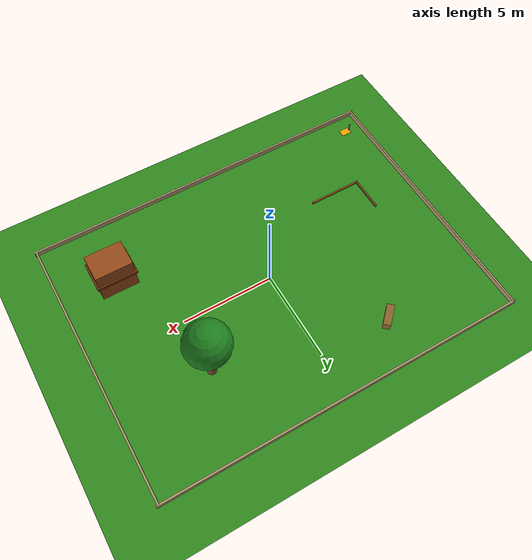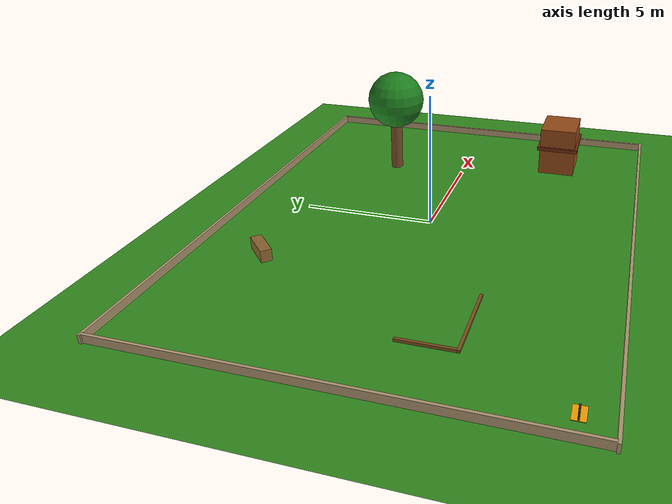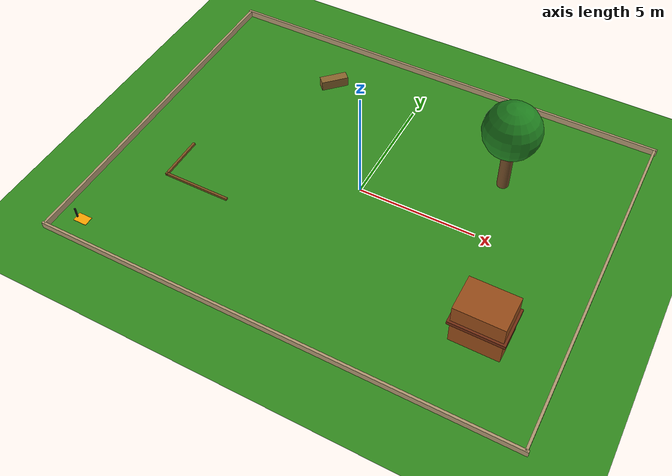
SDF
<?xml version="1.0"?>
<sdf version="1.9">
  <world name="garden">

    <!-- ================================================================
         Physics
         ================================================================ -->
    <physics name="default_physics" default="true" type="ode">
      <max_step_size>0.001</max_step_size>
      <real_time_factor>1.0</real_time_factor>
      <real_time_update_rate>1000</real_time_update_rate>
      <ode>
        <solver>
          <type>quick</type>
          <iters>150</iters>
          <sor>1.4</sor>
        </solver>
        <constraints>
          <cfm>0.0</cfm>
          <erp>0.2</erp>
          <contact_max_correcting_vel>10.0</contact_max_correcting_vel>
          <contact_surface_layer>0.001</contact_surface_layer>
        </constraints>
      </ode>
    </physics>

    <!-- ================================================================
         Required Ignition Fortress plugins
         ================================================================ -->
    <plugin filename="gz-sim-physics-system"
            name="gz::sim::systems::Physics"/>

    <plugin filename="gz-sim-user-commands-system"
            name="gz::sim::systems::UserCommands"/>

    <plugin filename="gz-sim-scene-broadcaster-system"
            name="gz::sim::systems::SceneBroadcaster"/>

    <plugin filename="gz-sim-contact-system"
            name="gz::sim::systems::Contact"/>

    <plugin filename="gz-sim-imu-system"
            name="gz::sim::systems::Imu"/>

    <plugin filename="gz-sim-sensors-system"
            name="gz::sim::systems::Sensors">
      <render_engine>ogre2</render_engine>
    </plugin>

    <!-- ================================================================
         Lighting
         ================================================================ -->
    <light name="sun" type="directional">
      <cast_shadows>true</cast_shadows>
      <pose>0 0 10 0 0 0</pose>
      <diffuse>0.9 0.9 0.9 1</diffuse>
      <specular>0.3 0.3 0.3 1</specular>
      <direction>-0.5 0.1 -0.9</direction>
      <attenuation>
        <range>1000</range>
        <constant>0.9</constant>
        <linear>0.01</linear>
        <quadratic>0.001</quadratic>
      </attenuation>
    </light>

    <!-- Ambient sky -->
    <scene>
      <ambient>0.6 0.6 0.6 1.0</ambient>
      <background>0.53 0.81 0.92 1.0</background>
      <shadows>true</shadows>
    </scene>

    <!-- ================================================================
         Ground plane — grass texture
         ================================================================ -->
    <model name="ground_plane">
      <static>true</static>
      <link name="link">
        <collision name="collision">
          <geometry>
            <plane>
              <normal>0 0 1</normal>
              <size>30 30</size>
            </plane>
          </geometry>
          <surface>
            <friction>
              <ode>
                <mu>0.8</mu>
                <mu2>0.8</mu2>
              </ode>
            </friction>
          </surface>
        </collision>
        <visual name="visual">
          <geometry>
            <plane>
              <normal>0 0 1</normal>
              <size>30 30</size>
            </plane>
          </geometry>
          <material>
            <ambient>0.18 0.45 0.10 1</ambient>
            <diffuse>0.20 0.55 0.12 1</diffuse>
            <specular>0.05 0.05 0.05 1</specular>
          </material>
        </visual>
      </link>
    </model>

    <!-- North wall  y =  7.5, runs along x -->
    <model name="wall_north">
      <static>true</static>
      <pose>0 7.5 0.15 0 0 0</pose>
      <link name="link">
        <collision name="collision">
          <geometry><box><size>20.2 0.1 0.3</size></box></geometry>
        </collision>
        <visual name="visual">
          <geometry><box><size>20.2 0.1 0.3</size></box></geometry>
          <material>
            <ambient>0.65 0.55 0.40 1</ambient>
            <diffuse>0.70 0.60 0.45 1</diffuse>
          </material>
        </visual>
      </link>
    </model>

    <!-- South wall  y = -7.5 -->
    <model name="wall_south">
      <static>true</static>
      <pose>0 -7.5 0.15 0 0 0</pose>
      <link name="link">
        <collision name="collision">
          <geometry><box><size>20.2 0.1 0.3</size></box></geometry>
        </collision>
        <visual name="visual">
          <geometry><box><size>20.2 0.1 0.3</size></box></geometry>
          <material>
            <ambient>0.65 0.55 0.40 1</ambient>
            <diffuse>0.70 0.60 0.45 1</diffuse>
          </material>
        </visual>
      </link>
    </model>

    <!-- West wall  x = -10 -->
    <model name="wall_west">
      <static>true</static>
      <pose>-10.0 0 0.15 0 0 1.5708</pose>
      <link name="link">
        <collision name="collision">
          <geometry><box><size>15.0 0.1 0.3</size></box></geometry>
        </collision>
        <visual name="visual">
          <geometry><box><size>15.0 0.1 0.3</size></box></geometry>
          <material>
            <ambient>0.65 0.55 0.40 1</ambient>
            <diffuse>0.70 0.60 0.45 1</diffuse>
          </material>
        </visual>
      </link>
    </model>

    <!-- East wall  x = 10 -->
    <model name="wall_east">
      <static>true</static>
      <pose>10.0 0 0.15 0 0 1.5708</pose>
      <link name="link">
        <collision name="collision">
          <geometry><box><size>15.0 0.1 0.3</size></box></geometry>
        </collision>
        <visual name="visual">
          <geometry><box><size>15.0 0.1 0.3</size></box></geometry>
          <material>
            <ambient>0.65 0.55 0.40 1</ambient>
            <diffuse>0.70 0.60 0.45 1</diffuse>
          </material>
        </visual>
      </link>
    </model>

    <model name="tree">
      <static>true</static>
      <pose>5.0 3.0 1.25 0 0 0</pose>
      <link name="trunk">
        <collision name="collision">
          <geometry>
            <cylinder><radius>0.25</radius><length>2.5</length></cylinder>
          </geometry>
        </collision>
        <visual name="visual">
          <geometry>
            <cylinder><radius>0.25</radius><length>2.5</length></cylinder>
          </geometry>
          <material>
            <ambient>0.40 0.26 0.13 1</ambient>
            <diffuse>0.45 0.30 0.15 1</diffuse>
          </material>
        </visual>
      </link>
      <!-- Canopy sphere (no collision — mower passes underneath) -->
      <link name="canopy">
        <pose>0 0 1.85 0 0 0</pose>
        <visual name="visual">
          <geometry>
            <sphere><radius>1.2</radius></sphere>
          </geometry>
          <material>
            <ambient>0.10 0.40 0.10 1</ambient>
            <diffuse>0.12 0.50 0.12 1</diffuse>
          </material>
        </visual>
        <!-- Lightweight inertial so link is valid -->
        <inertial>
          <mass>0.001</mass>
          <inertia><ixx>1e-6</ixx><ixy>0</ixy><ixz>0</ixz>
                   <iyy>1e-6</iyy><iyz>0</iyz><izz>1e-6</izz></inertia>
        </inertial>
      </link>
      <joint name="canopy_joint" type="fixed">
        <parent>trunk</parent>
        <child>canopy</child>
      </joint>
    </model>

    <model name="garden_bench">
      <static>true</static>
      <pose>-4.0 5.0 0.225 0 0 0.7854</pose>
      <link name="link">
        <collision name="collision">
          <geometry>
            <box><size>1.2 0.4 0.45</size></box>
          </geometry>
        </collision>
        <visual name="visual">
          <geometry>
            <box><size>1.2 0.4 0.45</size></box>
          </geometry>
          <material>
            <ambient>0.50 0.35 0.15 1</ambient>
            <diffuse>0.55 0.40 0.18 1</diffuse>
          </material>
        </visual>
      </link>
    </model>

    <model name="shed">
      <static>true</static>
      <pose>7.0 -4.0 1.0 0 0 0</pose>
      <link name="link">
        <collision name="collision">
          <geometry>
            <box><size>2.0 1.5 2.0</size></box>
          </geometry>
        </collision>
        <visual name="visual">
          <geometry>
            <box><size>2.0 1.5 2.0</size></box>
          </geometry>
          <material>
            <ambient>0.55 0.27 0.07 1</ambient>
            <diffuse>0.60 0.30 0.10 1</diffuse>
          </material>
        </visual>
      </link>
      <!-- Simple roof (visual only, pitched approximated as a flat overhang) -->
      <link name="roof">
        <pose>0 0 0.15 0 0 0</pose>
        <visual name="visual">
          <geometry>
            <box><size>2.2 1.7 0.15</size></box>
          </geometry>
          <material>
            <ambient>0.40 0.15 0.05 1</ambient>
            <diffuse>0.45 0.18 0.07 1</diffuse>
          </material>
        </visual>
        <inertial>
          <mass>0.001</mass>
          <inertia><ixx>1e-6</ixx><ixy>0</ixy><ixz>0</ixz>
                   <iyy>1e-6</iyy><iyz>0</iyz><izz>1e-6</izz></inertia>
        </inertial>
      </link>
      <joint name="roof_joint" type="fixed">
        <parent>link</parent>
        <child>roof</child>
      </joint>
    </model>

    <model name="flower_bed_border_a">
      <static>true</static>
      <pose>-6.0 -3.0 0.05 0 0 0</pose>
      <link name="link">
        <collision name="collision">
          <geometry>
            <box><size>3.0 0.1 0.10</size></box>
          </geometry>
        </collision>
        <visual name="visual">
          <geometry>
            <box><size>3.0 0.1 0.10</size></box>
          </geometry>
          <material>
            <ambient>0.45 0.28 0.10 1</ambient>
            <diffuse>0.50 0.32 0.12 1</diffuse>
          </material>
        </visual>
      </link>
    </model>

    <model name="flower_bed_border_b">
      <static>true</static>
      <pose>-7.45 -2.05 0.05 0 0 1.5708</pose>
      <link name="link">
        <collision name="collision">
          <geometry>
            <box><size>2.0 0.1 0.10</size></box>
          </geometry>
        </collision>
        <visual name="visual">
          <geometry>
            <box><size>2.0 0.1 0.10</size></box>
          </geometry>
          <material>
            <ambient>0.45 0.28 0.10 1</ambient>
            <diffuse>0.50 0.32 0.12 1</diffuse>
          </material>
        </visual>
      </link>
    </model>

    <model name="docking_station">
      <static>true</static>
      <pose>-9.0 -6.5 0.01 0 0 0</pose>
      <link name="base_plate">
        <collision name="collision">
          <geometry>
            <box><size>0.6 0.4 0.02</size></box>
          </geometry>
        </collision>
        <visual name="visual">
          <geometry>
            <box><size>0.6 0.4 0.02</size></box>
          </geometry>
          <material>
            <ambient>1.0 0.60 0.0 1</ambient>
            <diffuse>1.0 0.65 0.0 1</diffuse>
            <specular>0.3 0.3 0.1 1</specular>
          </material>
        </visual>
      </link>
      <!-- Upright charging post -->
      <link name="post">
        <pose>-0.25 0 0.25 0 0 0</pose>
        <collision name="collision">
          <geometry>
            <box><size>0.05 0.05 0.5</size></box>
          </geometry>
        </collision>
        <visual name="visual">
          <geometry>
            <box><size>0.05 0.05 0.5</size></box>
          </geometry>
          <material>
            <ambient>0.15 0.15 0.15 1</ambient>
            <diffuse>0.20 0.20 0.20 1</diffuse>
          </material>
        </visual>
        <inertial>
          <mass>0.001</mass>
          <inertia><ixx>1e-6</ixx><ixy>0</ixy><ixz>0</ixz>
                   <iyy>1e-6</iyy><iyz>0</iyz><izz>1e-6</izz></inertia>
        </inertial>
      </link>
      <joint name="post_joint" type="fixed">
        <parent>base_plate</parent>
        <child>post</child>
      </joint>
    </model>

  </world>
</sdf>
